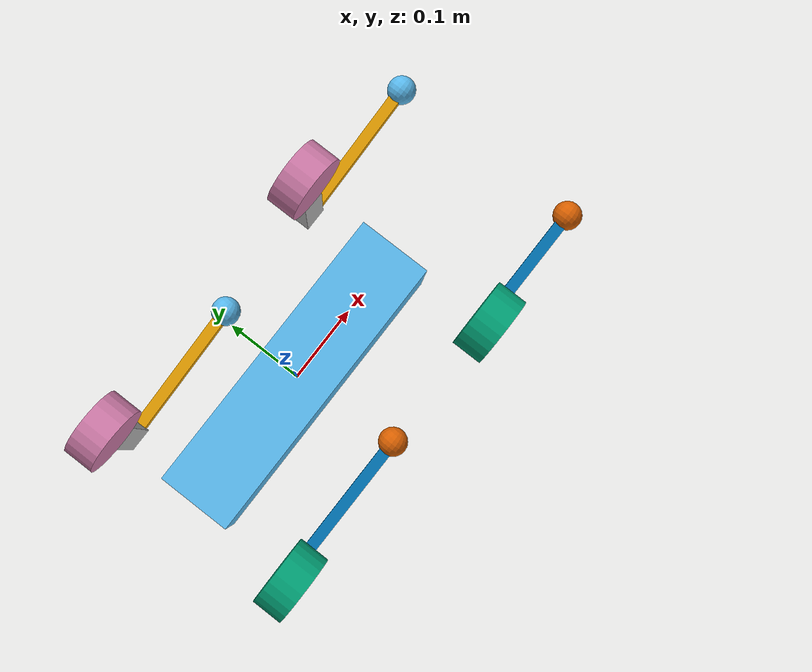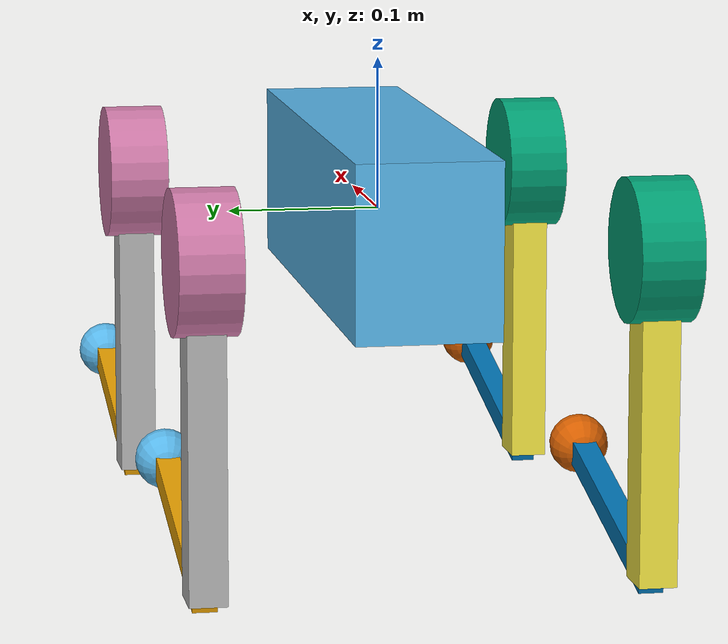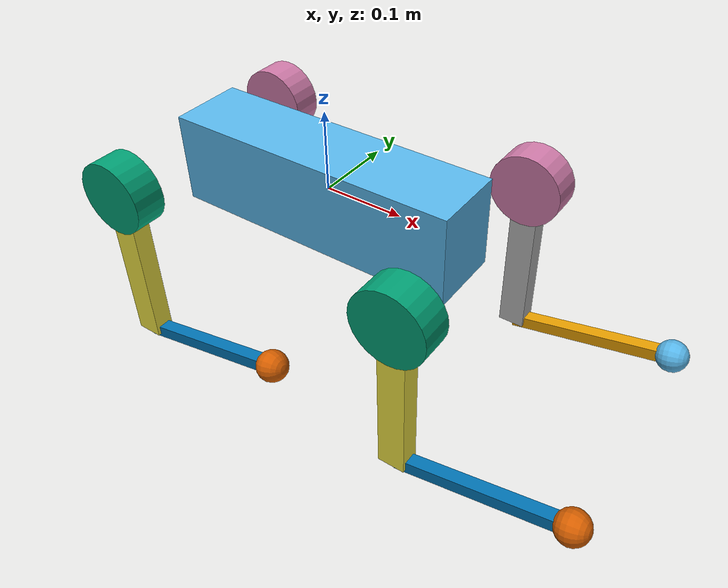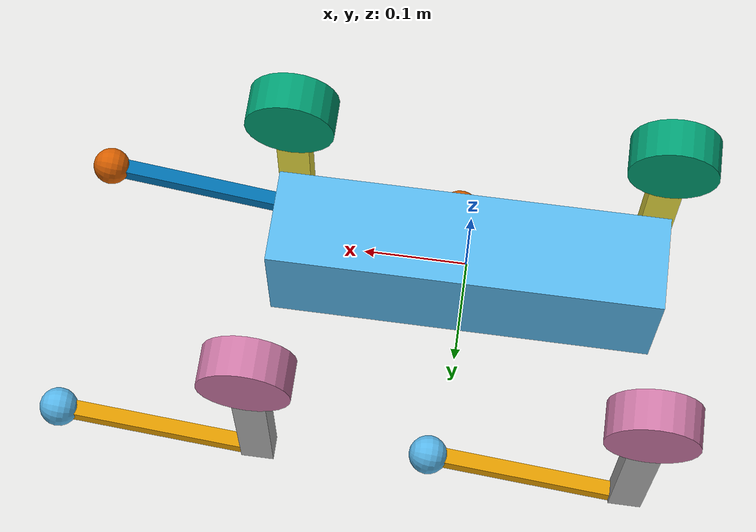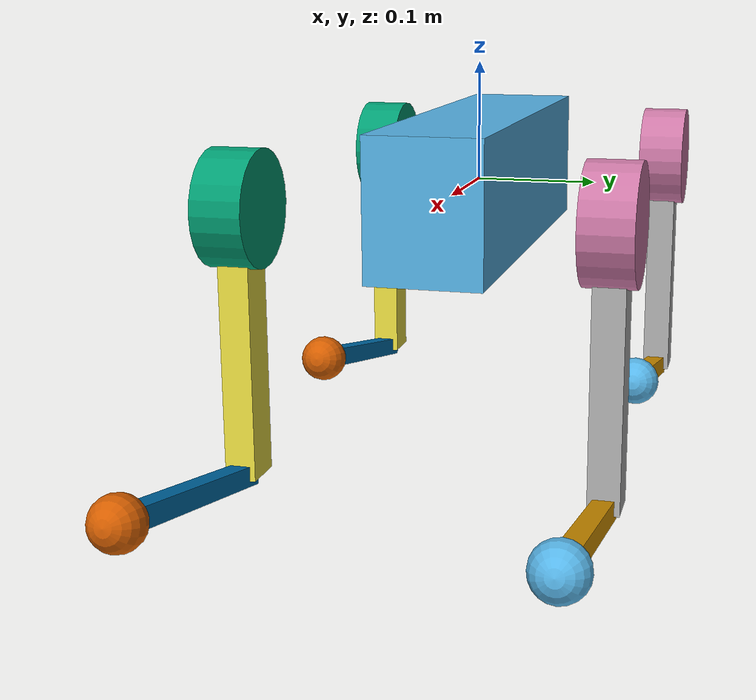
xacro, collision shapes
<?xml version="1.0"?>
<robot name="go2" xmlns:xacro="http://www.ros.org/wiki/xacro">
    <!-- Macros -->
    <xacro:include filename="$(find go2_description)/xacro/const.xacro"/>
    <xacro:include filename="$(find go2_description)/xacro/leg.xacro"/>
    <xacro:include filename="$(find go2_description)/xacro/gz.xacro"/>

    <!-- Base Link -->
    <link name="base_link"/>
    <joint name="floating_base" type="fixed">
        <origin rpy="0 0 0" xyz="0 0 0"/>
        <parent link="base_link"/>
        <child link="trunk"/>
    </joint>

    <link name="trunk">
        <visual>
            <origin rpy="0 0 0" xyz="0 0 0"/>
            <geometry>
                <mesh filename="file://$(find go2_description)/meshes/trunk.dae" scale="1 1 1"/>
            </geometry>
        </visual>
        <collision>
            <origin rpy="0 0 0" xyz="0 0 0"/>
            <geometry>
                <box size="${trunk_length} ${trunk_width} ${trunk_height}"/>
            </geometry>
        </collision>
        <inertial>
            <origin rpy="0 0 0" xyz="${trunk_com_x} ${trunk_com_y} ${trunk_com_z}"/>
            <mass value="${trunk_mass}"/>
            <inertia
                ixx="${trunk_ixx}" ixy="${trunk_ixy}" ixz="${trunk_ixz}"
                iyy="${trunk_iyy}" iyz="${trunk_iyz}"
                izz="${trunk_izz}"/>
        </inertial>
    </link>

    <!-- Legs -->
    <xacro:leg name="rf" mirror="-1" mirror_dae= "False" front_hind="1"  front_hind_dae="True"/>
    <xacro:leg name="lf" mirror="1"  mirror_dae="True"   front_hind="1"  front_hind_dae="True"/>
    <xacro:leg name="rh" mirror="-1" mirror_dae="False"  front_hind="-1" front_hind_dae="False"/>
    <xacro:leg name="lh" mirror="1"  mirror_dae="True"   front_hind="-1" front_hind_dae="False"/>

    <!-- IMU -->
    <link name="imu_link"/>
    <joint name="imu_joint" type="fixed">
        <parent link="trunk"/>
        <child link="imu_link"/>
        <origin rpy="0 0 0" xyz="0 0 0"/>
    </joint>

    <!-- Lidar -->
    <link name="lidar_link"/>
    <joint name="lidar_joint" type="fixed">
        <parent link="base_link"/>
        <child link="lidar_link"/>
        <origin xyz="0.225 0 0.105" rpy="0 0 0" />
    </joint>

    <!-- Camera -->
    <link name="camera_link"/>
    <joint name="camera_joint" type="fixed">
        <origin rpy="0 0 0" xyz="0.32715 -0.00003 0.04297"/>
        <parent link="base_link"/>
        <child link="camera_link"/>
    </joint>
</robot>

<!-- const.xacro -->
<robot xmlns:xacro="http://www.ros.org/wiki/xacro">
    <!-- Constants for robot dimensions -->
    <xacro:property name="PI" value="3.1415926535897931"/>
    <xacro:property name="stick_mass" value="0.00001"/>

    <!-- simplified collision value -->
    <xacro:property name="trunk_width" value="0.0935"/>
    <xacro:property name="trunk_length" value="0.3762"/>
    <xacro:property name="trunk_height" value="0.114"/>
    <xacro:property name="hip_radius" value="0.046"/>
    <xacro:property name="hip_length" value="0.04"/>
    <xacro:property name="thigh_shoulder_radius" value="0.041"/>
    <xacro:property name="thigh_shoulder_length" value="0.032"/>
    <xacro:property name="thigh_width" value="0.0245"/>
    <xacro:property name="thigh_height" value="0.034"/>
    <xacro:property name="calf_width" value="0.016"/>
    <xacro:property name="calf_height" value="0.016"/>
    <xacro:property name="foot_radius" value="0.02"/>
    <xacro:property name="stick_radius" value="0.01"/>
    <xacro:property name="stick_length" value="0.2"/>

    <!-- kinematic value -->
    <xacro:property name="thigh_offset" value="0.0955"/>
    <xacro:property name="thigh_length" value="0.213"/>
    <xacro:property name="calf_length" value="0.213"/>

    <!-- leg offset from trunk center value -->
    <xacro:property name="leg_offset_x" value="0.1934"/>
    <xacro:property name="leg_offset_y" value="0.0465"/>
    <xacro:property name="trunk_offset_z" value="0.01675"/>
    <xacro:property name="hip_offset" value="0.0955"/>

    <!-- offset of link locations (left front) -->
    <xacro:property name="hip_offset_x" value="0.1934"/>
    <xacro:property name="hip_offset_y" value="0.0465"/>
    <xacro:property name="hip_offset_z" value="0.0"/>

    <xacro:property name="thigh_offset_x" value="0"/>
    <xacro:property name="thigh_offset_y" value="0.0955"/>
    <xacro:property name="thigh_offset_z" value="0.0"/>

    <xacro:property name="calf_offset_x" value="0.0"/>
    <xacro:property name="calf_offset_y" value="0.0"/>
    <xacro:property name="calf_offset_z" value="-0.213"/>

    <!-- joint limits -->
    <xacro:property name="damping" value="0.01"/>
    <xacro:property name="friction" value="0.2"/>
    <xacro:property name="hip_position_max" value="1.0472"/>
    <xacro:property name="hip_position_min" value="-1.0472"/>
    <xacro:property name="hip_velocity_max" value="30.1"/>
    <xacro:property name="hip_torque_max" value="23.7"/>
    <xacro:property name="thigh_position_max" value="3.4907"/>
    <xacro:property name="thigh_position_min" value="-1.5708"/>
    <xacro:property name="thigh_velocity_max" value="30.1"/>
    <xacro:property name="thigh_torque_max" value="23.7"/>
    <xacro:property name="calf_position_max" value="-0.83776"/>
    <xacro:property name="calf_position_min" value="-2.7227"/>
    <xacro:property name="calf_velocity_max" value="20.06"/>
    <xacro:property name="calf_torque_max" value="35.55"/>

    <!-- dynamics inertial value -->
    <!-- trunk -->
    <xacro:property name="trunk_mass" value="6.921"/>
    <xacro:property name="trunk_com_x" value="0.021112"/>
    <xacro:property name="trunk_com_y" value="0.00"/>
    <xacro:property name="trunk_com_z" value="-0.005366"/>
    <xacro:property name="trunk_ixx" value="0.02448"/>
    <xacro:property name="trunk_ixy" value="0.00012166"/>
    <xacro:property name="trunk_ixz" value="0.0014849"/>
    <xacro:property name="trunk_iyy" value="0.098077"/>
    <xacro:property name="trunk_iyz" value="-3.12E-05"/>
    <xacro:property name="trunk_izz" value="0.107"/>

    <!-- hip (left front) -->
    <xacro:property name="hip_mass" value="0.678"/>
    <xacro:property name="hip_com_x" value="-0.0054"/>
    <xacro:property name="hip_com_y" value="0.00194"/>
    <xacro:property name="hip_com_z" value="-0.000105"/>
    <xacro:property name="hip_ixx" value="0.00048"/>
    <xacro:property name="hip_ixy" value="-3.01E-06"/>
    <xacro:property name="hip_ixz" value="1.11E-06"/>
    <xacro:property name="hip_iyy" value="0.000884"/>
    <xacro:property name="hip_iyz" value="-1.42E-06"/>
    <xacro:property name="hip_izz" value="0.000596"/>

    <!-- thigh -->
    <xacro:property name="thigh_mass" value="1.152"/>
    <xacro:property name="thigh_com_x" value="-0.00374"/>
    <xacro:property name="thigh_com_y" value="-0.0223"/>
    <xacro:property name="thigh_com_z" value="-0.0327"/>
    <xacro:property name="thigh_ixx" value="0.00584"/>
    <xacro:property name="thigh_ixy" value="8.72E-05"/>
    <xacro:property name="thigh_ixz" value="-0.000289"/>
    <xacro:property name="thigh_iyy" value="0.0058"/>
    <xacro:property name="thigh_iyz" value="0.000808"/>
    <xacro:property name="thigh_izz" value="0.00103"/>

    <!-- calf -->
    <xacro:property name="calf_mass" value="0.154"/>
    <xacro:property name="calf_com_x" value="0.00548"/>
    <xacro:property name="calf_com_y" value="-0.000975"/>
    <xacro:property name="calf_com_z" value="-0.115"/>
    <xacro:property name="calf_ixx" value="0.00108"/>
    <xacro:property name="calf_ixy" value="3.4E-07"/>
    <xacro:property name="calf_ixz" value="1.72E-05"/>
    <xacro:property name="calf_iyy" value="0.0011"/>
    <xacro:property name="calf_iyz" value="8.28E-06"/>
    <xacro:property name="calf_izz" value="3.29E-05"/>

    <!-- foot -->
    <xacro:property name="foot_mass" value="0.06"/>
</robot>

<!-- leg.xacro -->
<robot xmlns:xacro="http://www.ros.org/wiki/xacro">
    <xacro:macro name="leg" params="name mirror mirror_dae front_hind front_hind_dae">
        <joint name="${name}_hip_joint" type="revolute">
            <xacro:if value="${(mirror_dae == False) and (front_hind_dae == True)}">
                <origin rpy="0 0 0" xyz="${leg_offset_x} ${-leg_offset_y} 0"/>
            </xacro:if>
            <xacro:if value="${(mirror_dae == True) and (front_hind_dae == True)}">
                <origin rpy="0 0 0" xyz="${leg_offset_x} ${leg_offset_y} 0"/>
            </xacro:if>
            <xacro:if value="${(mirror_dae == False) and (front_hind_dae == False)}">
                <origin rpy="0 0 0" xyz="${-leg_offset_x} ${-leg_offset_y} 0"/>
            </xacro:if>
            <xacro:if value="${(mirror_dae == True) and (front_hind_dae == False)}">
                <origin rpy="0 0 0" xyz="${-leg_offset_x} ${leg_offset_y} 0"/>
            </xacro:if>
            <parent link="trunk"/>
            <child link="${name}_hip_link"/>
            <axis xyz="1 0 0"/>
            <dynamics damping="${damping}" friction="${friction}"/>
            <xacro:if value="${(mirror_dae == True)}">
                <limit effort="${hip_torque_max}" velocity="${hip_velocity_max}" lower="${hip_position_min}" upper="${hip_position_max}"/>
            </xacro:if>
            <xacro:if value="${(mirror_dae == False)}">
                <limit effort="${hip_torque_max}" velocity="${hip_velocity_max}" lower="${-hip_position_max}" upper="${-hip_position_min}"/>
            </xacro:if>
        </joint>

        <link name="${name}_hip_link">
            <visual>
                <xacro:if value="${(mirror_dae == True) and (front_hind_dae == True)}">
                    <origin rpy="0 0 0" xyz="0 0 0"/>
                </xacro:if>
                <xacro:if value="${(mirror_dae == False) and (front_hind_dae == True)}">
                    <origin rpy="${PI} 0 0" xyz="0 0 0"/>
                </xacro:if>
                <xacro:if value="${(mirror_dae == True) and (front_hind_dae == False)}">
                    <origin rpy="0 ${PI} 0" xyz="0 0 0"/>
                </xacro:if>
                <xacro:if value="${(mirror_dae == False) and (front_hind_dae == False)}">
                    <origin rpy="${PI} ${PI} 0" xyz="0 0 0"/>
                </xacro:if>
                <geometry>
                    <mesh filename="file://$(find go2_description)/meshes/hip.dae" scale="1 1 1"/>
                </geometry>
            </visual>
            <collision>
                <origin rpy="${PI/2.0} 0 0" xyz="0 ${hip_offset*mirror} 0"/>
                <geometry>
                    <cylinder length="${hip_length}" radius="${hip_radius}"/>
                </geometry>
            </collision>
            <inertial>
                <origin rpy="0 0 0" xyz="${hip_com_x*front_hind} ${hip_com_y*mirror} ${hip_com_z}"/>
                <mass value="${hip_mass}"/>
                <inertia
                    ixx="${hip_ixx}" ixy="${hip_ixy*mirror*front_hind}" ixz="${hip_ixz*front_hind}"
                    iyy="${hip_iyy}" iyz="${hip_iyz*mirror}"
                    izz="${hip_izz}"/>
            </inertial>
        </link>

        <joint name="${name}_upper_leg_joint" type="revolute">
            <origin rpy="0 0 0" xyz="0 ${thigh_offset*mirror} 0"/>
            <parent link="${name}_hip_link"/>
            <child link="${name}_upper_leg_link"/>
            <axis xyz="0 1 0"/>
            <dynamics damping="${damping}" friction="${friction}"/>
            <limit effort="${thigh_torque_max}" velocity="${thigh_velocity_max}" lower="${thigh_position_min}" upper="${thigh_position_max}"/>
        </joint>

        <link name="${name}_upper_leg_link">
            <visual>
                <origin rpy="0 0 0" xyz="0 0 0"/>
                <geometry>
                    <xacro:if value="${mirror_dae == True}">
                        <mesh filename="file://$(find go2_description)/meshes/thigh.dae" scale="1 1 1"/>
                    </xacro:if>
                    <xacro:if value="${mirror_dae == False}">
                        <mesh filename="file://$(find go2_description)/meshes/thigh_mirror.dae" scale="1 1 1"/>
                    </xacro:if>
                </geometry>
            </visual>
            <collision>
                <origin rpy="0 ${PI/2.0} 0" xyz="0 0 ${-thigh_length/2.0}"/>
                <geometry>
                    <box size="${thigh_length} ${thigh_width} ${thigh_height}"/>
                </geometry>
            </collision>
            <inertial>
                <origin rpy="0 0 0" xyz="${thigh_com_x} ${thigh_com_y*mirror} ${thigh_com_z}"/>
                <mass value="${thigh_mass}"/>
                <inertia
                    ixx="${thigh_ixx}" ixy="${thigh_ixy*mirror}" ixz="${thigh_ixz}"
                    iyy="${thigh_iyy}" iyz="${thigh_iyz*mirror}"
                    izz="${thigh_izz}"/>
            </inertial>
        </link>

        <joint name="${name}_lower_leg_joint" type="revolute">
            <origin rpy="0 0 0" xyz="0 0 ${-thigh_length}"/>
            <parent link="${name}_upper_leg_link"/>
            <child link="${name}_lower_leg_link"/>
            <axis xyz="0 1 0"/>
            <dynamics damping="${damping}" friction="${friction}"/>
            <limit effort="${calf_torque_max}" velocity="${calf_velocity_max}" lower="${calf_position_min}" upper="${calf_position_max}"/>
        </joint>

        <link name="${name}_lower_leg_link">
            <visual>
                <origin rpy="0 0 0" xyz="0 0 0"/>
                <geometry>
                    <mesh filename="file://$(find go2_description)/meshes/calf.dae" scale="1 1 1"/>
                </geometry>
            </visual>
            <collision>
                <origin rpy="0 ${PI/2.0} 0" xyz="0 0 ${-calf_length/2.0}"/>
                <geometry>
                    <box size="${calf_length} ${calf_width} ${calf_height}"/>
                </geometry>
            </collision>
            <inertial>
                <origin rpy="0 0 0" xyz="${calf_com_x} ${calf_com_y} ${calf_com_z}"/>
                <mass value="${calf_mass}"/>
                <inertia
                    ixx="${calf_ixx}" ixy="${calf_ixy}" ixz="${calf_ixz}"
                    iyy="${calf_iyy}" iyz="${calf_iyz}"
                    izz="${calf_izz}"/>
            </inertial>
        </link>

        <joint name="${name}_foot_joint" type="fixed">
            <origin rpy="0 0 0" xyz="0 0 ${-(calf_length)}"/>
            <parent link="${name}_lower_leg_link"/>
            <child link="${name}_foot_link"/>
        </joint>

        <link name="${name}_foot_link">
            <visual>
                <origin rpy="0 0 0" xyz="0 0 0"/>
                <geometry>
                    <sphere radius="${foot_radius-0.01}"/>
                </geometry>
            </visual>
            <collision>
                <origin rpy="0 0 0" xyz="0 0 0"/>
                <geometry>
                    <sphere radius="${foot_radius}"/>
                </geometry>
            </collision>
            <inertial>
                <mass value="${foot_mass}"/>
                <inertia
                    ixx="${(2*foot_mass)/5.0*(foot_radius*foot_radius)}" ixy="0.0" ixz="0.0"
                    iyy="${(2*foot_mass)/5.0*(foot_radius*foot_radius)}" iyz="0.0"
                    izz="${(2*foot_mass)/5.0*(foot_radius*foot_radius)}"/>
            </inertial>
        </link>

        <ros2_control name="${name}" type="system">
            <hardware>
                <plugin>gz_ros2_control/GazeboSimSystem</plugin>
            </hardware>
            <joint name="${name}_hip_joint">
                <command_interface name="effort"/>
                <state_interface name="position"/>
                <state_interface name="velocity"/>
            </joint>

            <joint name="${name}_upper_leg_joint">
                <command_interface name="effort"/>
                <state_interface name="position"/>
                <state_interface name="velocity"/>
            </joint>

            <joint name="${name}_lower_leg_joint">
                <command_interface name="effort"/>
                <state_interface name="position"/>
                <state_interface name="velocity"/>
            </joint>
        </ros2_control>
    </xacro:macro>
</robot>
